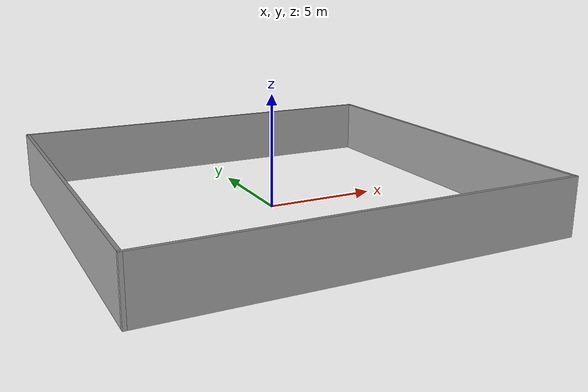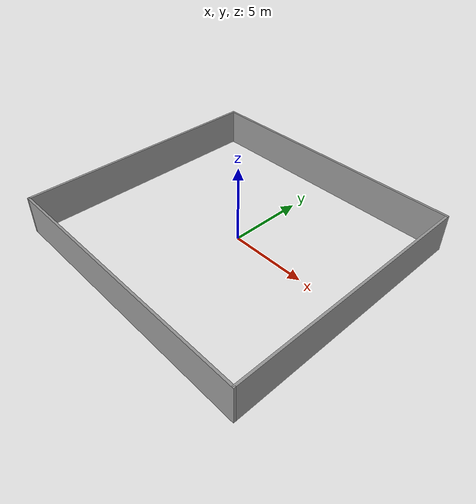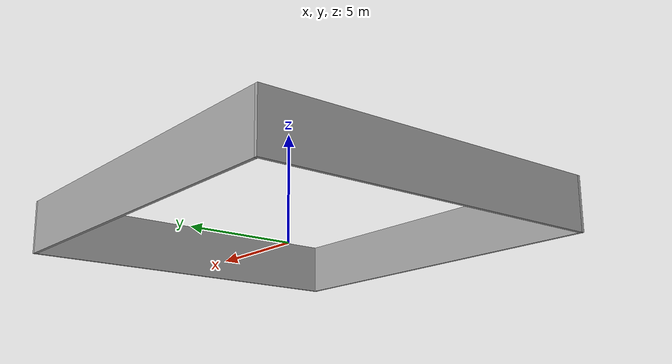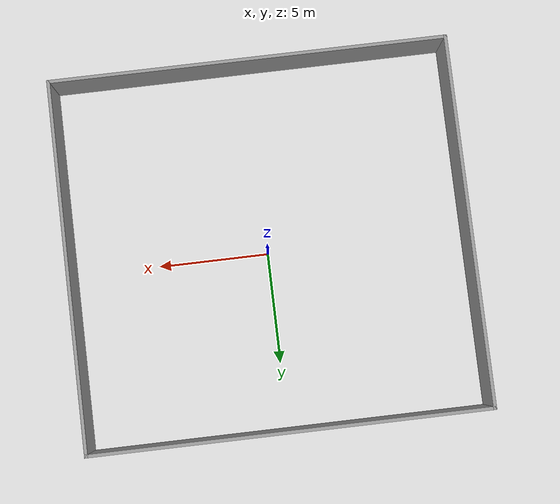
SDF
<?xml version='1.0'?>
<sdf version='1.7'>
  <model name='house'>
    <pose>-0.07554 -0.285877 0 0 -0 0</pose>
    <link name='Wall_10'>
      <collision name='Wall_10_Collision'>
        <geometry>
          <box>
            <size>18 0.15 2.5</size>
          </box>
        </geometry>
        <pose>0 0 1.25 0 -0 0</pose>
      </collision>
      <visual name='Wall_10_Visual'>
        <pose>0 0 1.25 0 -0 0</pose>
        <geometry>
          <box>
            <size>18 0.15 2.5</size>
          </box>
        </geometry>
        <material>
          <script>
            <uri>file://media/materials/scripts/gazebo.material</uri>
            <name>Gazebo/Grey</name>
          </script>
          <ambient>1 1 1 1</ambient>
        </material>
        <meta>
          <layer>0</layer>
        </meta>
      </visual>
      <pose>-0 -8.3 0 0 -0 3.14159</pose>
    </link>
    <link name='Wall_11'>
      <collision name='Wall_11_Collision'>
        <geometry>
          <box>
            <size>16.75 0.15 2.5</size>
          </box>
        </geometry>
        <pose>0 0 1.25 0 -0 0</pose>
      </collision>
      <visual name='Wall_11_Visual'>
        <pose>0 0 1.25 0 -0 0</pose>
        <geometry>
          <box>
            <size>16.75 0.15 2.5</size>
          </box>
        </geometry>
        <material>
          <script>
            <uri>file://media/materials/scripts/gazebo.material</uri>
            <name>Gazebo/Grey</name>
          </script>
          <ambient>1 1 1 1</ambient>
        </material>
        <meta>
          <layer>0</layer>
        </meta>
      </visual>
      <pose>-8.925 -0 0 0 -0 1.5708</pose>
    </link>
    <link name='Wall_8'>
      <collision name='Wall_8_Collision'>
        <geometry>
          <box>
            <size>18 0.15 2.5</size>
          </box>
        </geometry>
        <pose>0 0 1.25 0 -0 0</pose>
      </collision>
      <visual name='Wall_8_Visual'>
        <pose>0 0 1.25 0 -0 0</pose>
        <geometry>
          <box>
            <size>18 0.15 2.5</size>
          </box>
        </geometry>
        <material>
          <script>
            <uri>file://media/materials/scripts/gazebo.material</uri>
            <name>Gazebo/Grey</name>
          </script>
          <ambient>1 1 1 1</ambient>
        </material>
        <meta>
          <layer>0</layer>
        </meta>
      </visual>
      <pose>-0 8.3 0 0 -0 0</pose>
    </link>
    <link name='Wall_9'>
      <collision name='Wall_9_Collision'>
        <geometry>
          <box>
            <size>16.75 0.15 2.5</size>
          </box>
        </geometry>
        <pose>0 0 1.25 0 -0 0</pose>
      </collision>
      <visual name='Wall_9_Visual'>
        <pose>0 0 1.25 0 -0 0</pose>
        <geometry>
          <box>
            <size>16.75 0.15 2.5</size>
          </box>
        </geometry>
        <material>
          <script>
            <uri>file://media/materials/scripts/gazebo.material</uri>
            <name>Gazebo/Grey</name>
          </script>
          <ambient>1 1 1 1</ambient>
        </material>
        <meta>
          <layer>0</layer>
        </meta>
      </visual>
      <pose>8.925 -0 0 0 -0 -1.5708</pose>
    </link>
    <static>1</static>
  </model>
</sdf>
